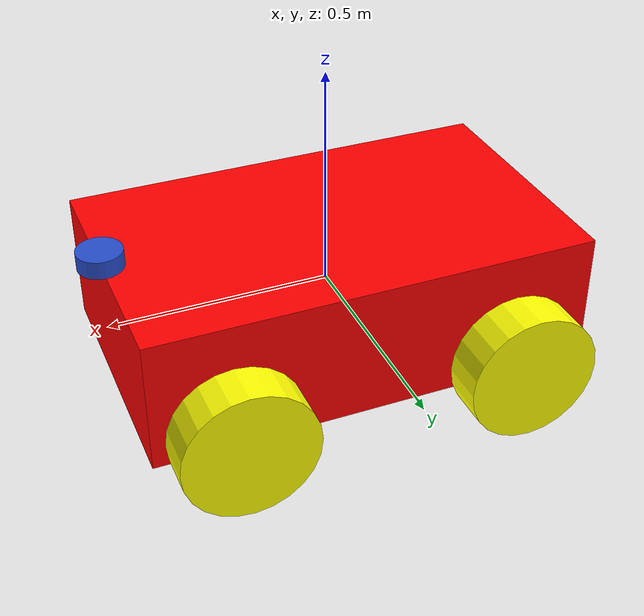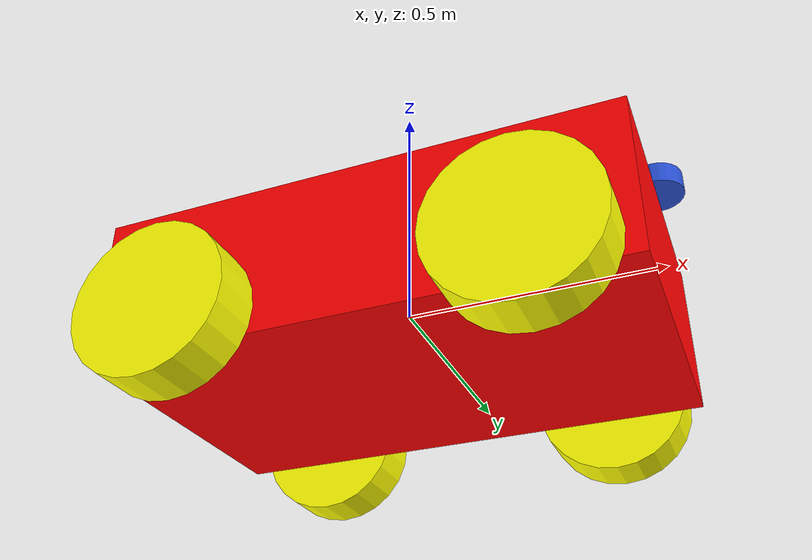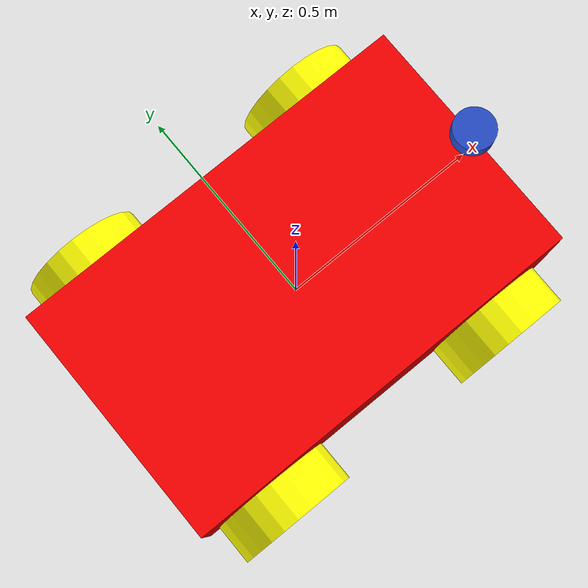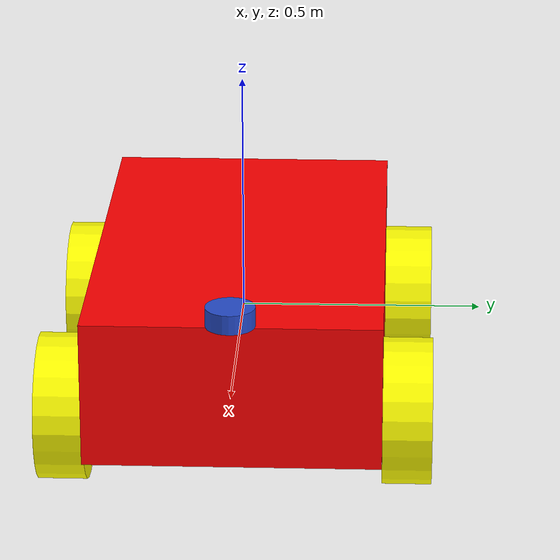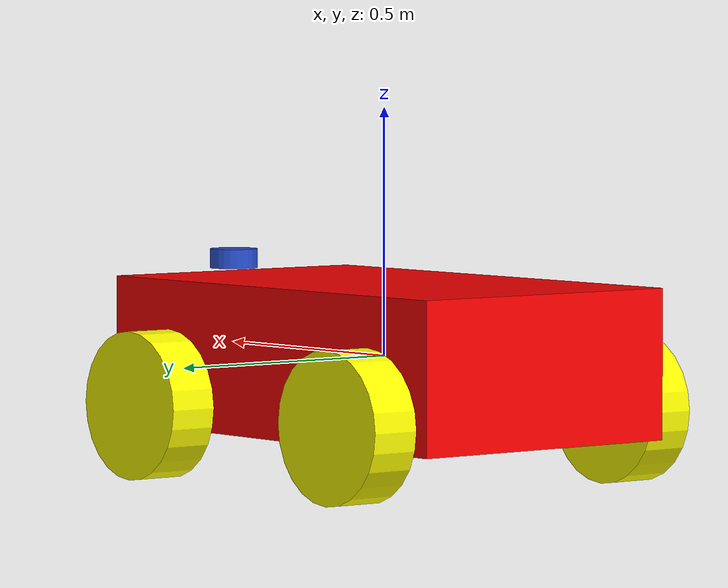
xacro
<?xml version="1.0"?>
<!-- DESCRIPTION OF THE 4-WHEELED ROBOT     -->

<robot name="mecanum_robot" xmlns:xacro="http://www.ros.org/wiki/xacro">

  <!-- Body dimensions -->
  <xacro:property name="body_link_x_dim" value="1"/>
  <xacro:property name="body_link_y_dim" value="0.6"/>
  <xacro:property name="body_link_z_dim" value="0.3"/>

  <!-- Include the lidar.xacro file -->
  <xacro:include filename="$(find meccanum_rcup)/urdf/lidar.xacro"/>

  <!-- Wheel dimensions -->
  <xacro:property name="wheel_link_radius" value="0.15"/>
  <xacro:property name="wheel_link_length" value="0.1"/>
  <xacro:property name="wheel_link_z_location" value="-0.1"/>

  <!-- Material density -->
  <xacro:property name="body_density" value="2710.0"/>
  <xacro:property name="wheel_density" value="2710.0"/>

  <!-- Pi constant -->
  <xacro:property name="pi_constant" value="3.14159265"/>

  <!-- Robot body and wheel mass -->
  <xacro:property name="body_mass" value="${body_density*body_link_x_dim*body_link_y_dim*body_link_z_dim}"/>
  <xacro:property name="wheel_mass" value="${wheel_density*pi_constant*wheel_link_radius*wheel_link_radius*wheel_link_length}"/>

  <!-- Moments of inertia of the wheel -->
  <xacro:property name="Iz_wheel" value="${0.5*wheel_mass*wheel_link_radius*wheel_link_radius}"/>
  <xacro:property name="I_wheel" value="${(1.0/12.0)*wheel_mass*(3.0*wheel_link_radius*wheel_link_radius+wheel_link_length*wheel_link_length)}"/>

  <!-- This macro defines the complete inertial section of the wheel -->
  <!-- It is used later in the code                                   -->
  <xacro:macro name="inertia_wheel">
    <inertial>
      <origin rpy="0 0 0" xyz="0 0 0"/>
      <mass value="${wheel_mass}"/>
      <inertia ixx="${I_wheel}" ixy="0" ixz="0" iyy="${I_wheel}" iyz="0" izz="${Iz_wheel}" />
    </inertial>
  </xacro:macro>

  <!-- Include the file that defines extra Gazebo options and motion control driver -->
  <xacro:include filename="$(find meccanum_rcup)/urdf/meccanum_rcup.gazebo" />

  <!-- DEFINE LINKS, JOINTS    -->

  <!-- Dummy link otherwise Gazebo will complain -->
  <link name="base_footprint"/>
  <joint name="base_joint" type="fixed">
    <parent link="base_footprint"/>
    <child link="body_link"/>
  </joint>

  <!-- START: BODY link of the robot    -->
  <link name="body_link">
    <visual>
      <geometry>
        <box size="${body_link_x_dim} ${body_link_y_dim} ${body_link_z_dim}" />
      </geometry>
      <material name="red">
            <color rgba="1 0 0 1"/>
      </material>
      <origin rpy="0 0 0" xyz="0 0 0"/>
    </visual>
    <collision>
      <geometry>
        <box size="${body_link_x_dim} ${body_link_y_dim} ${body_link_z_dim}" />
      </geometry>
      <origin rpy="0 0 0" xyz="0 0 0"/>
    </collision>
    <inertial>
      <origin rpy="0 0 0" xyz="0 0 0"/>
      <mass value="${body_mass}"/>
      <inertia ixx="${(1/12)*body_mass*(body_link_y_dim*body_link_y_dim+body_link_z_dim*body_link_z_dim)}"
               ixy="0" ixz="0"
               iyy="${(1/12)*body_mass*(body_link_x_dim*body_link_x_dim+body_link_z_dim*body_link_z_dim)}"
               iyz="0"
               izz="${(1/12)*body_mass*(body_link_x_dim*body_link_x_dim+body_link_y_dim*body_link_y_dim)}" />
    </inertial>
  </link>
  <!-- END: BODY link of the robot    -->

  <!-- START: Back right wheel of the robot and the joint -->
  <joint name="wheel1_joint" type="continuous">
    <parent link="body_link"/>
    <child link="wheel1_link"/>
    <origin xyz="${-body_link_x_dim/2+1.2*wheel_link_radius} ${-body_link_y_dim/2-wheel_link_length/2} ${wheel_link_z_location}" rpy="0 0 0"/>
    <axis xyz="0 1 0"/>
    <limit effort="1000" velocity="1000"/>
    <dynamics damping="1.0" friction="1.0"/>
  </joint>

  <link name="wheel1_link">
    <visual>
      <origin rpy="1.570795 0 0" xyz="0 0 0"/>
      <geometry>
        <cylinder length="${wheel_link_length}" radius="${wheel_link_radius}"/>
      </geometry>
      <material name="black">
            <color rgba="1 1 0 1"/>
      </material>
    </visual>
    <collision>
      <origin rpy="1.570795 0 0" xyz="0 0 0"/>
      <geometry>
        <cylinder length="${wheel_link_length}" radius="${wheel_link_radius}"/>
      </geometry>
    </collision>
    <xacro:inertia_wheel/>
  </link>
  <!-- END: Back right wheel of the robot and the joint -->

  <!-- START: Back left wheel of the robot and the joint -->
  <joint name="wheel2_joint" type="continuous">
    <parent link="body_link"/>
    <child link="wheel2_link"/>
    <origin xyz="${-body_link_x_dim/2+1.2*wheel_link_radius} ${body_link_y_dim/2+wheel_link_length/2} ${wheel_link_z_location}" rpy="0 0 0"/>
    <axis xyz="0 1 0"/>
    <limit effort="1000" velocity="1000"/>
    <dynamics damping="1.0" friction="1.0"/>
  </joint>

  <link name="wheel2_link">
    <visual>
      <origin rpy="1.570795 0 0" xyz="0 0 0"/>
      <geometry>
        <cylinder length="${wheel_link_length}" radius="${wheel_link_radius}"/>
      </geometry>
      <material name="black">
            <color rgba="1 1 0 1"/>
      </material>
    </visual>
    <collision>
      <origin rpy="1.570795 0 0" xyz="0 0 0"/>
      <geometry>
        <cylinder length="${wheel_link_length}" radius="${wheel_link_radius}"/>
      </geometry>
    </collision>
    <xacro:inertia_wheel/>
  </link>
  <!-- END: Back left wheel of the robot and the joint -->

  <!-- START: Front right wheel of the robot and the joint -->
  <joint name="wheel3_joint" type="continuous">
    <parent link="body_link"/>
    <child link="wheel3_link"/>
    <origin xyz="${body_link_x_dim/2-1.2*wheel_link_radius} ${-body_link_y_dim/2-wheel_link_length/2} ${wheel_link_z_location}" rpy="0 0 0"/>
    <axis xyz="0 1 0"/>
    <limit effort="1000" velocity="1000"/>
    <dynamics damping="1.0" friction="1.0"/>
  </joint>

  <link name="wheel3_link">
    <visual>
      <origin rpy="1.570795 0 0" xyz="0 0 0"/>
      <geometry>
        <cylinder length="${wheel_link_length}" radius="${wheel_link_radius}"/>
      </geometry>
      <material name="black">
            <color rgba="1 1 0 1"/>
      </material>
    </visual>
    <collision>
      <origin rpy="1.570795 0 0" xyz="0 0 0"/>
      <geometry>
        <cylinder length="${wheel_link_length}" radius="${wheel_link_radius}"/>
      </geometry>
    </collision>
    <xacro:inertia_wheel/>
  </link>
  <!-- END: Front right wheel of the robot and the joint -->

  <!-- START: Front left wheel of the robot and the joint -->

  <joint name="wheel4_joint" type="continuous">
    <parent link="body_link"/>
    <child link="wheel4_link"/>
    <origin xyz="${body_link_x_dim/2-1.2*wheel_link_radius} ${body_link_y_dim/2+wheel_link_length/2} ${wheel_link_z_location}" rpy="0 0 0"/>
    <axis xyz="0 1 0"/>
    <limit effort="1000" velocity="1000"/>
    <dynamics damping="1.0" friction="1.0"/>
  </joint>

  <link name="wheel4_link">
    <visual>
      <origin rpy="1.570795 0 0" xyz="0 0 0"/>
      <geometry>
        <cylinder length="${wheel_link_length}" radius="${wheel_link_radius}"/>
      </geometry>
      <material name="black">
            <color rgba="1 1 0 1"/>
      </material>
    </visual>
    <collision>
      <origin rpy="1.570795 0 0" xyz="0 0 0"/>
      <geometry>
        <cylinder length="${wheel_link_length}" radius="${wheel_link_radius}"/>
      </geometry>
    </collision>
    <xacro:inertia_wheel/>
  </link>
<!-- END: Front left wheel of the robot and the joint -->

</robot>

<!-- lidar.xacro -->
<robot xmlns:xacro="http://www.ros.org/wiki/xacro" >

    <xacro:macro name="inertial_cylinder" params="mass length radius *origin">
        <inertial>
            <xacro:insert_block name="origin"/>
            <mass value="${mass}" />
            <inertia ixx="${(1/12) * mass * (3*radius*radius + length*length)}" ixy="0.0" ixz="0.0"
                    iyy="${(1/12) * mass * (3*radius*radius + length*length)}" iyz="0.0"
                    izz="${(1/2) * mass * (radius*radius)}" />
        </inertial>
    </xacro:macro>

    <joint name="lidar_joint" type="fixed">
        <parent link="body_link"/>
        <child link="lidar_frame"/>
        <origin xyz="0.5 0 0.175" rpy="0 0 0"/>
    </joint>

    <link name="lidar_frame">
        <visual>
            <geometry>
                <cylinder radius="0.05" length="0.04"/>
            </geometry>
            <material name="blue"/>
        </visual>
        <collision>
            <geometry>
                <cylinder radius="0.05" length="0.04"/>
            </geometry>
        </collision>
        <xacro:inertial_cylinder mass="0.1" length="0.04" radius="0.05">
            <origin xyz="0 0 0" rpy="0 0 0"/>
        </xacro:inertial_cylinder>
    </link>

</robot>
